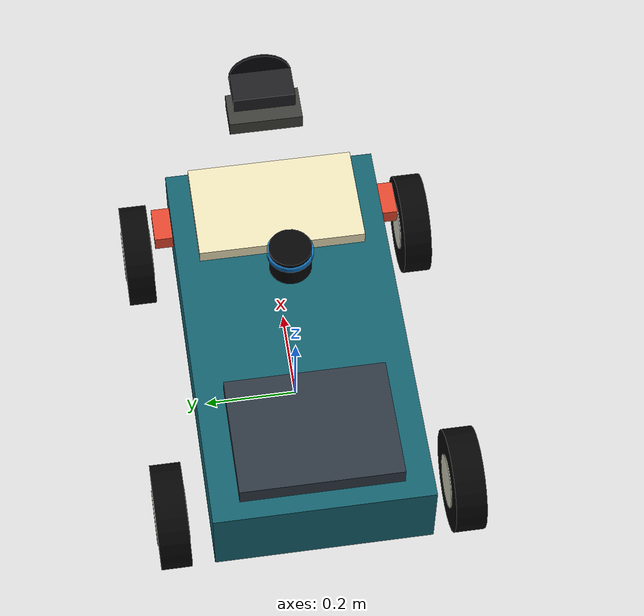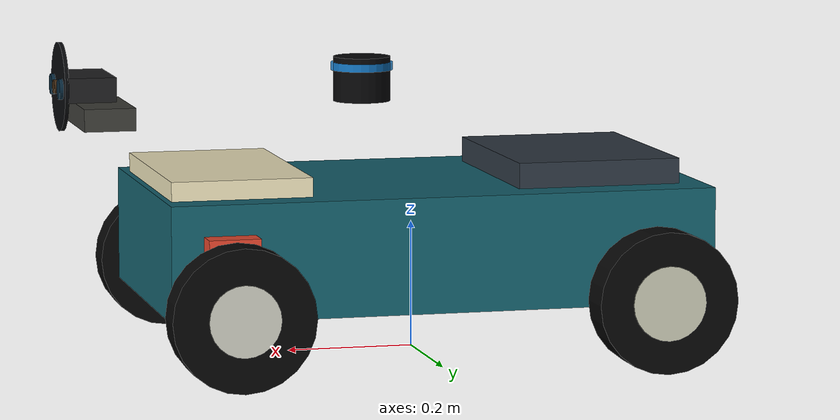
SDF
<?xml version="1.0"?>
<sdf version="1.6">
  <model name="version_car">
    <pose>0 0 0 0 0 0</pose>

    <link name="base_link">
      <pose>0 0 0.18 0 0 0</pose>
      <inertial>
        <mass>8.0</mass>
        <inertia>
          <ixx>0.24</ixx>
          <ixy>0.0</ixy>
          <ixz>0.0</ixz>
          <iyy>0.36</iyy>
          <iyz>0.0</iyz>
          <izz>0.50</izz>
        </inertia>
      </inertial>

      <collision name="base_collision">
        <geometry>
          <box>
            <size>0.86 0.46 0.18</size>
          </box>
        </geometry>
      </collision>
      <visual name="base_visual">
        <geometry>
          <box>
            <size>0.86 0.46 0.18</size>
          </box>
        </geometry>
        <material>
          <ambient>0.05 0.18 0.22 1</ambient>
          <diffuse>0.08 0.38 0.43 1</diffuse>
        </material>
      </visual>

      <visual name="front_nose_visual">
        <pose>0.31 0 0.08 0 0 0</pose>
        <geometry>
          <box>
            <size>0.22 0.36 0.08</size>
          </box>
        </geometry>
        <material>
          <ambient>0.90 0.88 0.76 1</ambient>
          <diffuse>0.94 0.90 0.74 1</diffuse>
        </material>
      </visual>

      <visual name="rear_drive_cover_visual">
        <pose>-0.26 0 0.09 0 0 0</pose>
        <geometry>
          <box>
            <size>0.26 0.34 0.08</size>
          </box>
        </geometry>
        <material>
          <ambient>0.14 0.17 0.20 1</ambient>
          <diffuse>0.18 0.22 0.26 1</diffuse>
        </material>
      </visual>
    </link>

    <link name="front_steering_link">
      <pose>0.34 0 0.205 0 0 0</pose>
      <inertial>
        <mass>0.20</mass>
        <inertia>
          <ixx>0.0008</ixx>
          <ixy>0.0</ixy>
          <ixz>0.0</ixz>
          <iyy>0.0004</iyy>
          <iyz>0.0</iyz>
          <izz>0.0008</izz>
        </inertia>
      </inertial>
      <visual name="steering_bar_visual">
        <geometry>
          <box>
            <size>0.08 0.54 0.035</size>
          </box>
        </geometry>
        <material>
          <ambient>0.85 0.26 0.18 1</ambient>
          <diffuse>0.90 0.28 0.18 1</diffuse>
        </material>
      </visual>
    </link>

    <link name="front_left_wheel">
      <pose>0.34 0.31 0.11 0 0 1.57079632679</pose>
      <inertial>
        <mass>0.55</mass>
        <inertia>
          <ixx>0.0025</ixx>
          <ixy>0.0</ixy>
          <ixz>0.0</ixz>
          <iyy>0.0038</iyy>
          <iyz>0.0</iyz>
          <izz>0.0025</izz>
        </inertia>
      </inertial>
      <visual name="tire_visual">
        <pose>0 0 0 0 1.57079632679 0</pose>
        <geometry>
          <cylinder>
            <radius>0.11</radius>
            <length>0.06</length>
          </cylinder>
        </geometry>
        <material>
          <ambient>0.02 0.02 0.02 1</ambient>
          <diffuse>0.02 0.02 0.02 1</diffuse>
        </material>
      </visual>
      <visual name="hub_visual">
        <pose>0 0 0 0 1.57079632679 0</pose>
        <geometry>
          <cylinder>
            <radius>0.055</radius>
            <length>0.064</length>
          </cylinder>
        </geometry>
        <material>
          <ambient>0.72 0.72 0.68 1</ambient>
          <diffuse>0.80 0.80 0.75 1</diffuse>
        </material>
      </visual>
      <collision name="collision">
        <geometry>
          <sphere>
            <radius>0.11</radius>
          </sphere>
        </geometry>
        <surface>
          <friction>
            <ode>
              <mu>1.0</mu>
              <mu2>1.0</mu2>
              <slip1>0.0</slip1>
              <slip2>0.0</slip2>
            </ode>
          </friction>
          <contact>
            <ode>
              <kp>1e+9</kp>
              <kd>1.0</kd>
              <min_depth>0.001</min_depth>
            </ode>
          </contact>
        </surface>
      </collision>
    </link>

    <link name="front_right_wheel">
      <pose>0.34 -0.31 0.11 0 0 1.57079632679</pose>
      <inertial>
        <mass>0.55</mass>
        <inertia>
          <ixx>0.0025</ixx>
          <ixy>0.0</ixy>
          <ixz>0.0</ixz>
          <iyy>0.0038</iyy>
          <iyz>0.0</iyz>
          <izz>0.0025</izz>
        </inertia>
      </inertial>
      <visual name="tire_visual">
        <pose>0 0 0 0 1.57079632679 0</pose>
        <geometry>
          <cylinder>
            <radius>0.11</radius>
            <length>0.06</length>
          </cylinder>
        </geometry>
        <material>
          <ambient>0.02 0.02 0.02 1</ambient>
          <diffuse>0.02 0.02 0.02 1</diffuse>
        </material>
      </visual>
      <visual name="hub_visual">
        <pose>0 0 0 0 1.57079632679 0</pose>
        <geometry>
          <cylinder>
            <radius>0.055</radius>
            <length>0.064</length>
          </cylinder>
        </geometry>
        <material>
          <ambient>0.72 0.72 0.68 1</ambient>
          <diffuse>0.80 0.80 0.75 1</diffuse>
        </material>
      </visual>
      <collision name="collision">
        <geometry>
          <sphere>
            <radius>0.11</radius>
          </sphere>
        </geometry>
        <surface>
          <friction>
            <ode>
              <mu>1.0</mu>
              <mu2>1.0</mu2>
              <slip1>0.0</slip1>
              <slip2>0.0</slip2>
            </ode>
          </friction>
          <contact>
            <ode>
              <kp>1e+9</kp>
              <kd>1.0</kd>
              <min_depth>0.001</min_depth>
            </ode>
          </contact>
        </surface>
      </collision>
    </link>

    <link name="rear_left_wheel">
      <pose>-0.32 0.31 0.11 0 0 1.57079632679</pose>
      <inertial>
        <mass>0.65</mass>
        <inertia>
          <ixx>0.0030</ixx>
          <ixy>0.0</ixy>
          <ixz>0.0</ixz>
          <iyy>0.0045</iyy>
          <iyz>0.0</iyz>
          <izz>0.0030</izz>
        </inertia>
      </inertial>
      <visual name="tire_visual">
        <pose>0 0 0 0 1.57079632679 0</pose>
        <geometry>
          <cylinder>
            <radius>0.11</radius>
            <length>0.065</length>
          </cylinder>
        </geometry>
        <material>
          <ambient>0.02 0.02 0.02 1</ambient>
          <diffuse>0.02 0.02 0.02 1</diffuse>
        </material>
      </visual>
      <visual name="hub_visual">
        <pose>0 0 0 0 1.57079632679 0</pose>
        <geometry>
          <cylinder>
            <radius>0.058</radius>
            <length>0.069</length>
          </cylinder>
        </geometry>
        <material>
          <ambient>0.68 0.68 0.62 1</ambient>
          <diffuse>0.78 0.78 0.70 1</diffuse>
        </material>
      </visual>
      <collision name="collision">
        <geometry>
          <sphere>
            <radius>0.11</radius>
          </sphere>
        </geometry>
        <surface>
          <friction>
            <ode>
              <mu>1.3</mu>
              <mu2>1.3</mu2>
              <slip1>0.0</slip1>
              <slip2>0.0</slip2>
            </ode>
          </friction>
          <contact>
            <ode>
              <kp>1e+9</kp>
              <kd>1.0</kd>
              <min_depth>0.001</min_depth>
            </ode>
          </contact>
        </surface>
      </collision>
    </link>

    <link name="rear_right_wheel">
      <pose>-0.32 -0.31 0.11 0 0 1.57079632679</pose>
      <inertial>
        <mass>0.65</mass>
        <inertia>
          <ixx>0.0030</ixx>
          <ixy>0.0</ixy>
          <ixz>0.0</ixz>
          <iyy>0.0045</iyy>
          <iyz>0.0</iyz>
          <izz>0.0030</izz>
        </inertia>
      </inertial>
      <visual name="tire_visual">
        <pose>0 0 0 0 1.57079632679 0</pose>
        <geometry>
          <cylinder>
            <radius>0.11</radius>
            <length>0.065</length>
          </cylinder>
        </geometry>
        <material>
          <ambient>0.02 0.02 0.02 1</ambient>
          <diffuse>0.02 0.02 0.02 1</diffuse>
        </material>
      </visual>
      <visual name="hub_visual">
        <pose>0 0 0 0 1.57079632679 0</pose>
        <geometry>
          <cylinder>
            <radius>0.058</radius>
            <length>0.069</length>
          </cylinder>
        </geometry>
        <material>
          <ambient>0.68 0.68 0.62 1</ambient>
          <diffuse>0.78 0.78 0.70 1</diffuse>
        </material>
      </visual>
      <collision name="collision">
        <geometry>
          <sphere>
            <radius>0.11</radius>
          </sphere>
        </geometry>
        <surface>
          <friction>
            <ode>
              <mu>1.3</mu>
              <mu2>1.3</mu2>
              <slip1>0.0</slip1>
              <slip2>0.0</slip2>
            </ode>
          </friction>
          <contact>
            <ode>
              <kp>1e+9</kp>
              <kd>1.0</kd>
              <min_depth>0.001</min_depth>
            </ode>
          </contact>
        </surface>
      </collision>
    </link>

    <link name="mid360_link">
      <pose>0.08 0 0.43 0 0 0</pose>
      <inertial>
        <mass>0.28</mass>
        <inertia>
          <ixx>0.00045</ixx>
          <ixy>0.0</ixy>
          <ixz>0.0</ixz>
          <iyy>0.00045</iyy>
          <iyz>0.0</iyz>
          <izz>0.0006</izz>
        </inertia>
      </inertial>
      <collision name="lidar_collision">
        <geometry>
          <cylinder>
            <radius>0.045</radius>
            <length>0.07</length>
          </cylinder>
        </geometry>
      </collision>
      <visual name="lidar_visual">
        <geometry>
          <cylinder>
            <radius>0.045</radius>
            <length>0.07</length>
          </cylinder>
        </geometry>
        <material>
          <ambient>0.02 0.02 0.025 1</ambient>
          <diffuse>0.02 0.02 0.025 1</diffuse>
        </material>
      </visual>
      <visual name="lidar_window_visual">
        <pose>0 0 0.02 0 0 0</pose>
        <geometry>
          <cylinder>
            <radius>0.049</radius>
            <length>0.012</length>
          </cylinder>
        </geometry>
        <material>
          <ambient>0.10 0.45 0.72 0.85</ambient>
          <diffuse>0.12 0.55 0.88 0.85</diffuse>
        </material>
      </visual>

    </link>

    <link name="d435i_link">
      <pose>0.52 0 0.43 0 0 0</pose>
      <inertial>
        <mass>0.08</mass>
        <inertia>
          <ixx>0.00008</ixx>
          <ixy>0.0</ixy>
          <ixz>0.0</ixz>
          <iyy>0.00005</iyy>
          <iyz>0.0</iyz>
          <izz>0.00010</izz>
        </inertia>
      </inertial>
      <collision name="d435i_collision">
        <geometry>
          <box>
            <size>0.075 0.135 0.038</size>
          </box>
        </geometry>
      </collision>
      <visual name="d435i_body_visual">
        <geometry>
          <box>
            <size>0.075 0.135 0.038</size>
          </box>
        </geometry>
        <material>
          <ambient>0.08 0.08 0.085 1</ambient>
          <diffuse>0.12 0.12 0.13 1</diffuse>
        </material>
      </visual>
      <visual name="d435i_front_face_visual">
        <pose>0.039 0 0 0 1.57079632679 0</pose>
        <geometry>
          <cylinder>
            <radius>0.069</radius>
            <length>0.006</length>
          </cylinder>
        </geometry>
        <material>
          <ambient>0.02 0.025 0.03 1</ambient>
          <diffuse>0.025 0.03 0.04 1</diffuse>
        </material>
      </visual>
      <visual name="d435i_left_lens_visual">
        <pose>0.044 0.038 0 0 1.57079632679 0</pose>
        <geometry>
          <cylinder>
            <radius>0.016</radius>
            <length>0.008</length>
          </cylinder>
        </geometry>
        <material>
          <ambient>0.02 0.10 0.16 1</ambient>
          <diffuse>0.03 0.16 0.24 1</diffuse>
        </material>
      </visual>
      <visual name="d435i_right_lens_visual">
        <pose>0.044 -0.038 0 0 1.57079632679 0</pose>
        <geometry>
          <cylinder>
            <radius>0.016</radius>
            <length>0.008</length>
          </cylinder>
        </geometry>
        <material>
          <ambient>0.02 0.10 0.16 1</ambient>
          <diffuse>0.03 0.16 0.24 1</diffuse>
        </material>
      </visual>
      <visual name="d435i_ir_projector_visual">
        <pose>0.045 0 0 0 1.57079632679 0</pose>
        <geometry>
          <cylinder>
            <radius>0.011</radius>
            <length>0.009</length>
          </cylinder>
        </geometry>
        <material>
          <ambient>0.16 0.10 0.04 1</ambient>
          <diffuse>0.24 0.15 0.06 1</diffuse>
        </material>
      </visual>
      <visual name="d435i_mount_visual">
        <pose>-0.025 0 -0.045 0 0 0</pose>
        <geometry>
          <box>
            <size>0.08 0.16 0.035</size>
          </box>
        </geometry>
        <material>
          <ambient>0.18 0.18 0.17 1</ambient>
          <diffuse>0.24 0.24 0.22 1</diffuse>
        </material>
      </visual>

      <sensor name="d435i_depth_camera" type="depth">
        <pose>0.045 0 0 0 0 0</pose>
        <visualize>true</visualize>
        <always_on>true</always_on>
        <update_rate>15</update_rate>
        <camera>
          <horizontal_fov>1.211</horizontal_fov>
          <image>
            <width>640</width>
            <height>480</height>
            <format>R8G8B8</format>
          </image>
          <depth_camera>
          </depth_camera>
          <clip>
            <near>0.10</near>
            <far>8.0</far>
          </clip>
          <noise>
            <type>gaussian</type>
            <mean>0.0</mean>
            <stddev>0.003</stddev>
          </noise>
        </camera>
        <plugin name="d435i_camera_controller" filename="libgazebo_ros_camera.so">
          <ros>
            <namespace>d435i</namespace>
            <remapping>camera/image_raw:=color/image_raw</remapping>
            <remapping>camera/camera_info:=color/camera_info</remapping>
            <remapping>camera/depth/image_raw:=depth/image_raw</remapping>
            <remapping>camera/depth/camera_info:=depth/camera_info</remapping>
            <remapping>camera/points:=depth/points</remapping>
          </ros>
          <camera_name>camera</camera_name>
          <frame_name>d435i_depth_optical_frame</frame_name>
          <min_depth>0.20</min_depth>
          <max_depth>6.0</max_depth>
        </plugin>
      </sensor>
    </link>

    <joint name="front_steering_joint" type="revolute">
      <parent>base_link</parent>
      <child>front_steering_link</child>
      <axis>
        <xyz>0 0 1</xyz>
        <limit>
          <lower>-0.70</lower>
          <upper>0.70</upper>
        </limit>
        <dynamics>
          <damping>0.8</damping>
        </dynamics>
      </axis>
    </joint>

    <joint name="front_left_wheel_joint" type="universal">
      <parent>base_link</parent>
      <child>front_left_wheel</child>
      <axis>
        <xyz>0 0 1</xyz>
        <limit>
          <lower>-0.70</lower>
          <upper>0.70</upper>
        </limit>
        <dynamics>
          <damping>0.4</damping>
        </dynamics>
      </axis>
      <axis2>
        <xyz>1 0 0</xyz>
        <dynamics>
          <friction>0.20</friction>
        </dynamics>
      </axis2>
    </joint>

    <joint name="front_right_wheel_joint" type="universal">
      <parent>base_link</parent>
      <child>front_right_wheel</child>
      <axis>
        <xyz>0 0 1</xyz>
        <limit>
          <lower>-0.70</lower>
          <upper>0.70</upper>
        </limit>
        <dynamics>
          <damping>0.4</damping>
        </dynamics>
      </axis>
      <axis2>
        <xyz>1 0 0</xyz>
        <dynamics>
          <friction>0.20</friction>
        </dynamics>
      </axis2>
    </joint>

    <joint name="rear_left_wheel_joint" type="revolute">
      <parent>base_link</parent>
      <child>rear_left_wheel</child>
      <axis>
        <xyz>1 0 0</xyz>
        <limit>
          <lower>-1.79769e+308</lower>
          <upper>1.79769e+308</upper>
        </limit>
        <dynamics>
          <friction>0.15</friction>
        </dynamics>
      </axis>
    </joint>

    <joint name="rear_right_wheel_joint" type="revolute">
      <parent>base_link</parent>
      <child>rear_right_wheel</child>
      <axis>
        <xyz>1 0 0</xyz>
        <limit>
          <lower>-1.79769e+308</lower>
          <upper>1.79769e+308</upper>
        </limit>
        <dynamics>
          <friction>0.15</friction>
        </dynamics>
      </axis>
    </joint>

    <joint name="mid360_fixed_joint" type="fixed">
      <parent>base_link</parent>
      <child>mid360_link</child>
    </joint>

    <joint name="d435i_camera_fixed_joint" type="fixed">
      <parent>base_link</parent>
      <child>d435i_link</child>
    </joint>

    <plugin name="planar_move" filename="libgazebo_ros_planar_move.so">
      <ros>
        <remapping>cmd_vel:=cmd_vel</remapping>
        <remapping>odom:=odom</remapping>
      </ros>
      <update_rate>100.0</update_rate>
      <publish_rate>30.0</publish_rate>

      <publish_odom>true</publish_odom>
      <publish_odom_tf>true</publish_odom_tf>

      <odometry_frame>odom</odometry_frame>
      <robot_base_frame>base_link</robot_base_frame>

      <covariance_x>0.0001</covariance_x>
      <covariance_y>0.0001</covariance_y>
      <covariance_yaw>0.01</covariance_yaw>
    </plugin>
  </model>
</sdf>
